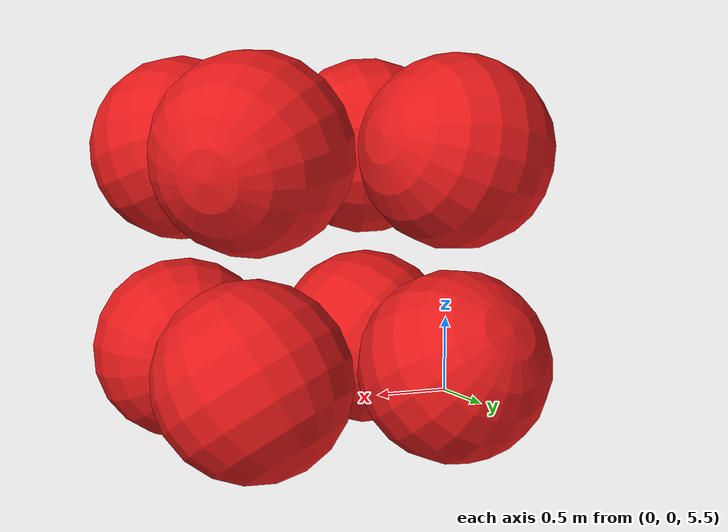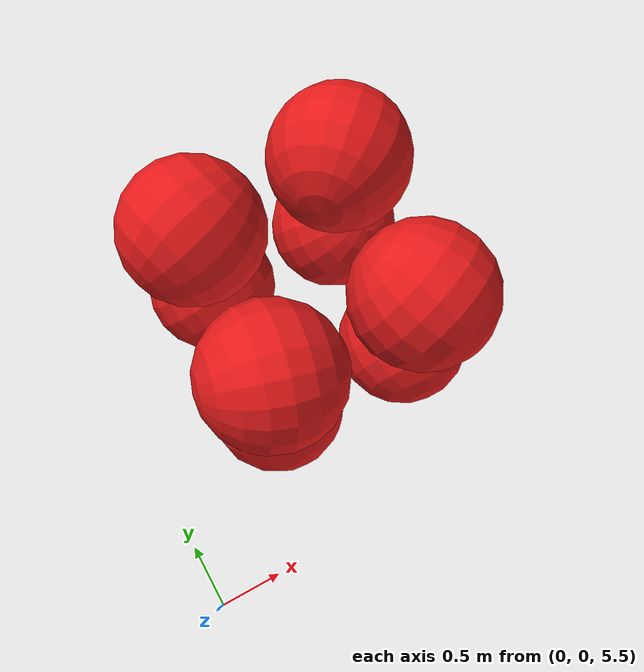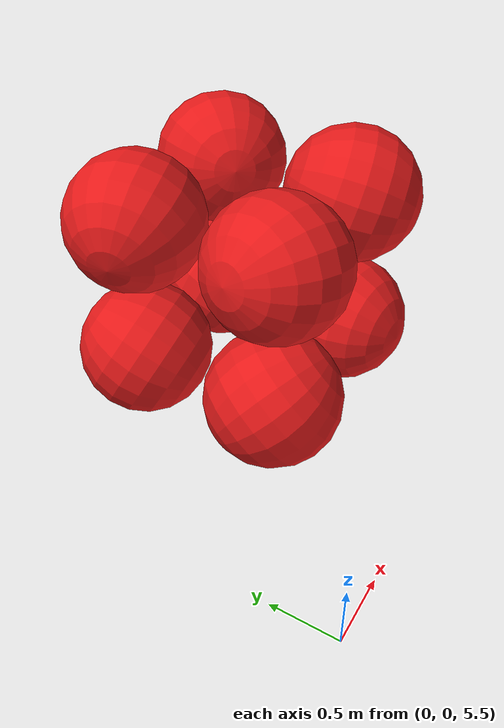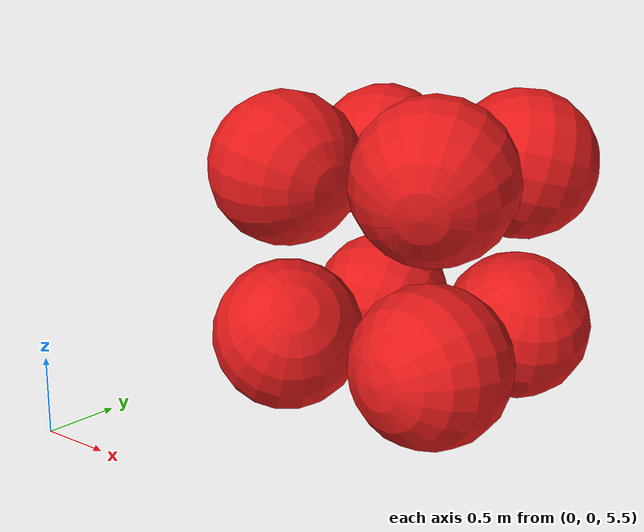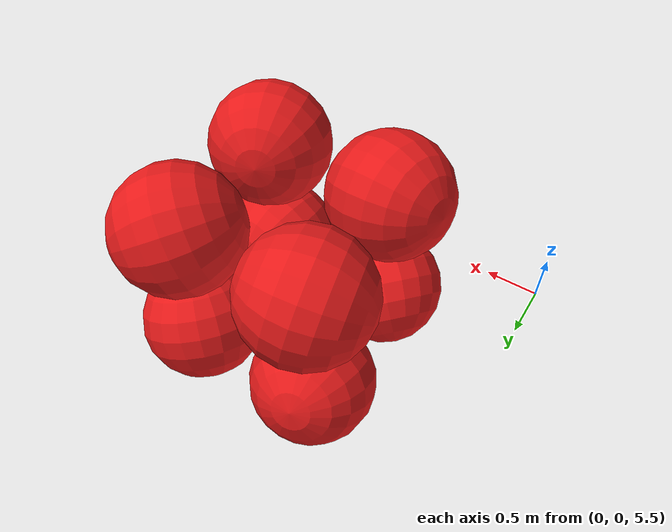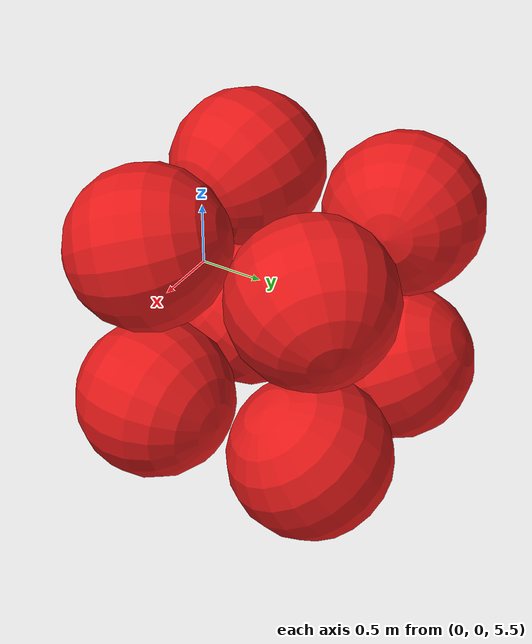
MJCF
<mujoco model="Humanoid and 100 objects">
    <compiler angle="degree"/>

    <option timestep="0.01" iterations="50" solver="PGS" jacobian="sparse" cone="elliptic" tolerance="1e-10"/>

    <size njmax="5000" nconmax="2000" nstack="1000000000"/>

    <default>
        <geom solimp=".9 .9 .01"/>

        <default class="object5">
			<geom type="sphere" material="geom" rgba=".9 .1 .1 1" size="0.500000"/>
        </default>
    </default>

    <asset>
        <texture type="skybox" builtin="gradient" width="128" height="128" rgb1=".4 .6 .8" rgb2="0 0 0"/>
        <texture name="texgeom" type="cube" builtin="flat" mark="cross" width="128" height="128"
            rgb1="0.6 0.6 0.6" rgb2="0.6 0.6 0.6" markrgb="1 1 1"/>
        <texture name="texplane" type="2d" builtin="checker" rgb1=".4 .4 .4" rgb2=".6 .6 .6"
            width="512" height="512"/>
        <material name='geom' texture="texgeom" texuniform="true"/>
        <material name='MatPlane' reflectance='0.3' texture="texplane" texrepeat="1 1" texuniform="true"/>
    </asset>

    <visual>
        <quality shadowsize="4096" offsamples="8"/>
        <map znear="0.1" force="0.05"/>
    </visual>

    <statistic extent="4"/>

    <worldbody>
        <light directional="true" diffuse=".8 .8 .8" pos="0 0 10" dir="0 0 -10"/>

        <geom pos="0 0 0" type="plane" size="3 3 .5" rgba=".7 .7 .7 1" material="MatPlane"/>
		<body pos="1.100547 1.100958 6.100965" quat="-0.462558 0.635761 0.617623 -0.019757"> <freejoint/> <geom class="object5"/> </body>
		<body pos="1.100800 1.100142 7.200422" quat="0.591732 0.415910 0.654013 0.221672"> <freejoint/> <geom class="object5"/> </body>
		<body pos="1.100036 2.200849 6.100934" quat="0.434643 0.626764 0.591242 -0.262079"> <freejoint/> <geom class="object5"/> </body>
		<body pos="1.100655 2.200171 7.200706" quat="-0.586490 -0.279457 -0.568528 -0.504688"> <freejoint/> <geom class="object5"/> </body>
		<body pos="2.200823 1.100695 6.100317" quat="0.680889 -0.704076 -0.092639 -0.179124"> <freejoint/> <geom class="object5"/> </body>
		<body pos="2.200766 1.100795 7.200187" quat="-0.039164 -0.208198 0.559823 0.801073"> <freejoint/> <geom class="object5"/> </body>
		<body pos="2.200755 2.200276 6.100680" quat="0.291523 -0.634157 -0.716135 -0.003075"> <freejoint/> <geom class="object5"/> </body>
		<body pos="2.200960 2.200340 7.200585" quat="-0.618459 0.562654 -0.548408 0.013339"> <freejoint/> <geom class="object5"/> </body>

    </worldbody>
</mujoco>
